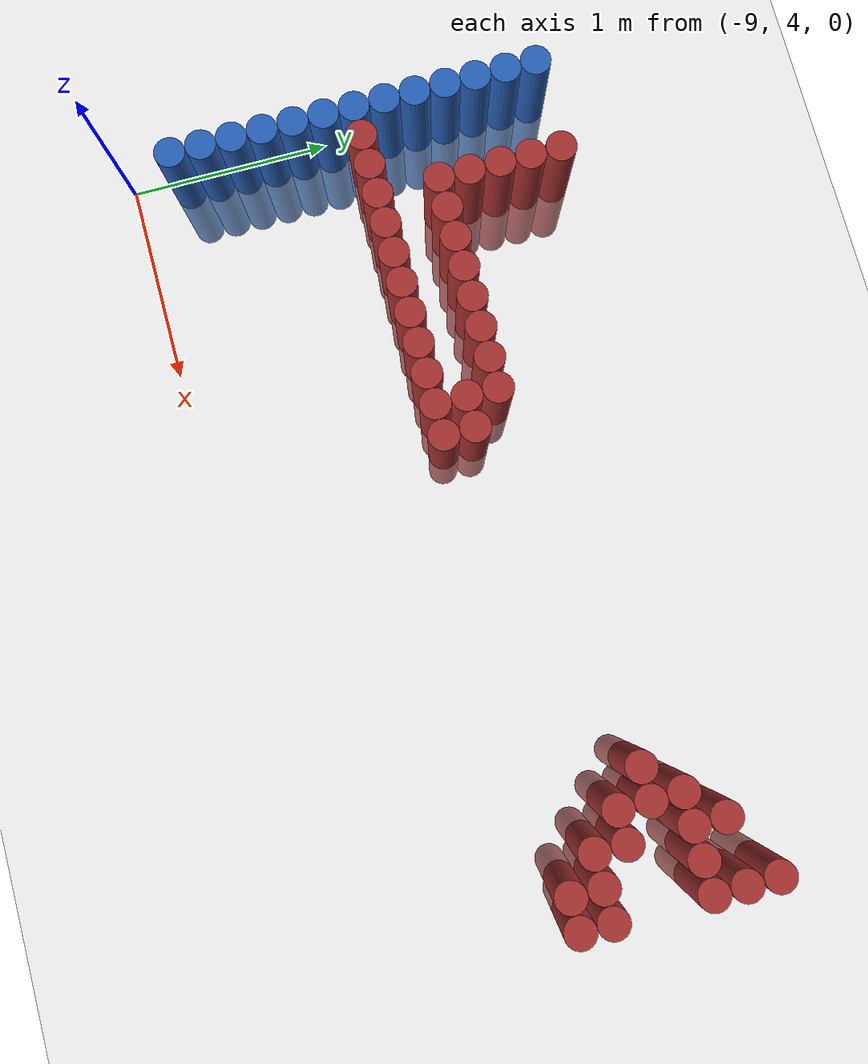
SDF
<sdf version="1.6">
 <world name="default">
  <model name="ground_plane">
   <static>1</static>
   <link name="link">
    <collision name="collision">
     <geometry><plane><normal>0 0 1</normal><size>100 100</size></plane></geometry>
     <surface><friction><ode><mu>100</mu><mu2>50</mu2></ode></friction></surface>
    </collision>
    <visual name="visual">
     <cast_shadows>0</cast_shadows>
     <geometry><plane><normal>0 0 1</normal><size>100 100</size></plane></geometry>
     <material>
      <script><uri>file://media/materials/scripts/gazebo.material</uri><name>Gazebo/Grey</name></script>
     </material>
    </visual>
   </link>
  </model>
  <model name="unit_cylinder_114">
   <static>1</static>
   <pose>-8.925000 4.275000 0.000000 0.000000 0.000000 0.000000</pose>
   <link name="link">
    <inertial>
     <mass>1</mass>
     <inertia><ixx>0.145833</ixx><ixy>0</ixy><ixz>0</ixz><iyy>0.145833</iyy><iyz>0</iyz><izz>0.125</izz></inertia>
    </inertial>
    <collision name="collision">
     <geometry><cylinder><radius>0.075000</radius><length>1</length></cylinder></geometry>
    </collision>
    <visual name="visual">
     <geometry><cylinder><radius>0.075000</radius><length>1</length></cylinder></geometry>
     <material>
      <ambient>0.152000 0.379000 0.720000 1</ambient>
      <diffuse>0.152000 0.379000 0.720000 1</diffuse>
     </material>
     <material>
      <script><name>Gazebo/Grey</name><uri>file://media/materials/scripts/gazebo.material</uri></script>
     </material>
    </visual>
   </link>
  </model>
  <model name="unit_cylinder_116">
   <static>1</static>
   <pose>-8.925000 4.425000 0.000000 0.000000 0.000000 0.000000</pose>
   <link name="link">
    <inertial>
     <mass>1</mass>
     <inertia><ixx>0.145833</ixx><ixy>0</ixy><ixz>0</ixz><iyy>0.145833</iyy><iyz>0</iyz><izz>0.125</izz></inertia>
    </inertial>
    <collision name="collision">
     <geometry><cylinder><radius>0.075000</radius><length>1</length></cylinder></geometry>
    </collision>
    <visual name="visual">
     <geometry><cylinder><radius>0.075000</radius><length>1</length></cylinder></geometry>
     <material>
      <ambient>0.152000 0.379000 0.720000 1</ambient>
      <diffuse>0.152000 0.379000 0.720000 1</diffuse>
     </material>
     <material>
      <script><name>Gazebo/Grey</name><uri>file://media/materials/scripts/gazebo.material</uri></script>
     </material>
    </visual>
   </link>
  </model>
  <model name="unit_cylinder_118">
   <static>1</static>
   <pose>-8.925000 4.575000 0.000000 0.000000 0.000000 0.000000</pose>
   <link name="link">
    <inertial>
     <mass>1</mass>
     <inertia><ixx>0.145833</ixx><ixy>0</ixy><ixz>0</ixz><iyy>0.145833</iyy><iyz>0</iyz><izz>0.125</izz></inertia>
    </inertial>
    <collision name="collision">
     <geometry><cylinder><radius>0.075000</radius><length>1</length></cylinder></geometry>
    </collision>
    <visual name="visual">
     <geometry><cylinder><radius>0.075000</radius><length>1</length></cylinder></geometry>
     <material>
      <ambient>0.152000 0.379000 0.720000 1</ambient>
      <diffuse>0.152000 0.379000 0.720000 1</diffuse>
     </material>
     <material>
      <script><name>Gazebo/Grey</name><uri>file://media/materials/scripts/gazebo.material</uri></script>
     </material>
    </visual>
   </link>
  </model>
  <model name="unit_cylinder_120">
   <static>1</static>
   <pose>-8.925000 4.725000 0.000000 0.000000 0.000000 0.000000</pose>
   <link name="link">
    <inertial>
     <mass>1</mass>
     <inertia><ixx>0.145833</ixx><ixy>0</ixy><ixz>0</ixz><iyy>0.145833</iyy><iyz>0</iyz><izz>0.125</izz></inertia>
    </inertial>
    <collision name="collision">
     <geometry><cylinder><radius>0.075000</radius><length>1</length></cylinder></geometry>
    </collision>
    <visual name="visual">
     <geometry><cylinder><radius>0.075000</radius><length>1</length></cylinder></geometry>
     <material>
      <ambient>0.152000 0.379000 0.720000 1</ambient>
      <diffuse>0.152000 0.379000 0.720000 1</diffuse>
     </material>
     <material>
      <script><name>Gazebo/Grey</name><uri>file://media/materials/scripts/gazebo.material</uri></script>
     </material>
    </visual>
   </link>
  </model>
  <model name="unit_cylinder_122">
   <static>1</static>
   <pose>-8.925000 4.875000 0.000000 0.000000 0.000000 0.000000</pose>
   <link name="link">
    <inertial>
     <mass>1</mass>
     <inertia><ixx>0.145833</ixx><ixy>0</ixy><ixz>0</ixz><iyy>0.145833</iyy><iyz>0</iyz><izz>0.125</izz></inertia>
    </inertial>
    <collision name="collision">
     <geometry><cylinder><radius>0.075000</radius><length>1</length></cylinder></geometry>
    </collision>
    <visual name="visual">
     <geometry><cylinder><radius>0.075000</radius><length>1</length></cylinder></geometry>
     <material>
      <ambient>0.152000 0.379000 0.720000 1</ambient>
      <diffuse>0.152000 0.379000 0.720000 1</diffuse>
     </material>
     <material>
      <script><name>Gazebo/Grey</name><uri>file://media/materials/scripts/gazebo.material</uri></script>
     </material>
    </visual>
   </link>
  </model>
  <model name="unit_cylinder_124">
   <static>1</static>
   <pose>-8.925000 5.025000 0.000000 0.000000 0.000000 0.000000</pose>
   <link name="link">
    <inertial>
     <mass>1</mass>
     <inertia><ixx>0.145833</ixx><ixy>0</ixy><ixz>0</ixz><iyy>0.145833</iyy><iyz>0</iyz><izz>0.125</izz></inertia>
    </inertial>
    <collision name="collision">
     <geometry><cylinder><radius>0.075000</radius><length>1</length></cylinder></geometry>
    </collision>
    <visual name="visual">
     <geometry><cylinder><radius>0.075000</radius><length>1</length></cylinder></geometry>
     <material>
      <ambient>0.152000 0.379000 0.720000 1</ambient>
      <diffuse>0.152000 0.379000 0.720000 1</diffuse>
     </material>
     <material>
      <script><name>Gazebo/Grey</name><uri>file://media/materials/scripts/gazebo.material</uri></script>
     </material>
    </visual>
   </link>
  </model>
  <model name="unit_cylinder_125">
   <static>1</static>
   <pose>-8.925000 5.175000 0.000000 0.000000 0.000000 0.000000</pose>
   <link name="link">
    <inertial>
     <mass>1</mass>
     <inertia><ixx>0.145833</ixx><ixy>0</ixy><ixz>0</ixz><iyy>0.145833</iyy><iyz>0</iyz><izz>0.125</izz></inertia>
    </inertial>
    <collision name="collision">
     <geometry><cylinder><radius>0.075000</radius><length>1</length></cylinder></geometry>
    </collision>
    <visual name="visual">
     <geometry><cylinder><radius>0.075000</radius><length>1</length></cylinder></geometry>
     <material>
      <ambient>0.152000 0.379000 0.720000 1</ambient>
      <diffuse>0.152000 0.379000 0.720000 1</diffuse>
     </material>
     <material>
      <script><name>Gazebo/Grey</name><uri>file://media/materials/scripts/gazebo.material</uri></script>
     </material>
    </visual>
   </link>
  </model>
  <model name="unit_cylinder_126">
   <static>1</static>
   <pose>-8.925000 5.325000 0.000000 0.000000 0.000000 0.000000</pose>
   <link name="link">
    <inertial>
     <mass>1</mass>
     <inertia><ixx>0.145833</ixx><ixy>0</ixy><ixz>0</ixz><iyy>0.145833</iyy><iyz>0</iyz><izz>0.125</izz></inertia>
    </inertial>
    <collision name="collision">
     <geometry><cylinder><radius>0.075000</radius><length>1</length></cylinder></geometry>
    </collision>
    <visual name="visual">
     <geometry><cylinder><radius>0.075000</radius><length>1</length></cylinder></geometry>
     <material>
      <ambient>0.152000 0.379000 0.720000 1</ambient>
      <diffuse>0.152000 0.379000 0.720000 1</diffuse>
     </material>
     <material>
      <script><name>Gazebo/Grey</name><uri>file://media/materials/scripts/gazebo.material</uri></script>
     </material>
    </visual>
   </link>
  </model>
  <model name="unit_cylinder_127">
   <static>1</static>
   <pose>-8.925000 5.475000 0.000000 0.000000 0.000000 0.000000</pose>
   <link name="link">
    <inertial>
     <mass>1</mass>
     <inertia><ixx>0.145833</ixx><ixy>0</ixy><ixz>0</ixz><iyy>0.145833</iyy><iyz>0</iyz><izz>0.125</izz></inertia>
    </inertial>
    <collision name="collision">
     <geometry><cylinder><radius>0.075000</radius><length>1</length></cylinder></geometry>
    </collision>
    <visual name="visual">
     <geometry><cylinder><radius>0.075000</radius><length>1</length></cylinder></geometry>
     <material>
      <ambient>0.152000 0.379000 0.720000 1</ambient>
      <diffuse>0.152000 0.379000 0.720000 1</diffuse>
     </material>
     <material>
      <script><name>Gazebo/Grey</name><uri>file://media/materials/scripts/gazebo.material</uri></script>
     </material>
    </visual>
   </link>
  </model>
  <model name="unit_cylinder_128">
   <static>1</static>
   <pose>-8.925000 5.625000 0.000000 0.000000 0.000000 0.000000</pose>
   <link name="link">
    <inertial>
     <mass>1</mass>
     <inertia><ixx>0.145833</ixx><ixy>0</ixy><ixz>0</ixz><iyy>0.145833</iyy><iyz>0</iyz><izz>0.125</izz></inertia>
    </inertial>
    <collision name="collision">
     <geometry><cylinder><radius>0.075000</radius><length>1</length></cylinder></geometry>
    </collision>
    <visual name="visual">
     <geometry><cylinder><radius>0.075000</radius><length>1</length></cylinder></geometry>
     <material>
      <ambient>0.152000 0.379000 0.720000 1</ambient>
      <diffuse>0.152000 0.379000 0.720000 1</diffuse>
     </material>
     <material>
      <script><name>Gazebo/Grey</name><uri>file://media/materials/scripts/gazebo.material</uri></script>
     </material>
    </visual>
   </link>
  </model>
  <model name="unit_cylinder_129">
   <static>1</static>
   <pose>-8.925000 5.775000 0.000000 0.000000 0.000000 0.000000</pose>
   <link name="link">
    <inertial>
     <mass>1</mass>
     <inertia><ixx>0.145833</ixx><ixy>0</ixy><ixz>0</ixz><iyy>0.145833</iyy><iyz>0</iyz><izz>0.125</izz></inertia>
    </inertial>
    <collision name="collision">
     <geometry><cylinder><radius>0.075000</radius><length>1</length></cylinder></geometry>
    </collision>
    <visual name="visual">
     <geometry><cylinder><radius>0.075000</radius><length>1</length></cylinder></geometry>
     <material>
      <ambient>0.152000 0.379000 0.720000 1</ambient>
      <diffuse>0.152000 0.379000 0.720000 1</diffuse>
     </material>
     <material>
      <script><name>Gazebo/Grey</name><uri>file://media/materials/scripts/gazebo.material</uri></script>
     </material>
    </visual>
   </link>
  </model>
  <model name="unit_cylinder_130">
   <static>1</static>
   <pose>-8.925000 5.925000 0.000000 0.000000 0.000000 0.000000</pose>
   <link name="link">
    <inertial>
     <mass>1</mass>
     <inertia><ixx>0.145833</ixx><ixy>0</ixy><ixz>0</ixz><iyy>0.145833</iyy><iyz>0</iyz><izz>0.125</izz></inertia>
    </inertial>
    <collision name="collision">
     <geometry><cylinder><radius>0.075000</radius><length>1</length></cylinder></geometry>
    </collision>
    <visual name="visual">
     <geometry><cylinder><radius>0.075000</radius><length>1</length></cylinder></geometry>
     <material>
      <ambient>0.152000 0.379000 0.720000 1</ambient>
      <diffuse>0.152000 0.379000 0.720000 1</diffuse>
     </material>
     <material>
      <script><name>Gazebo/Grey</name><uri>file://media/materials/scripts/gazebo.material</uri></script>
     </material>
    </visual>
   </link>
  </model>
  <model name="unit_cylinder_131">
   <static>1</static>
   <pose>-8.925000 6.075000 0.000000 0.000000 0.000000 0.000000</pose>
   <link name="link">
    <inertial>
     <mass>1</mass>
     <inertia><ixx>0.145833</ixx><ixy>0</ixy><ixz>0</ixz><iyy>0.145833</iyy><iyz>0</iyz><izz>0.125</izz></inertia>
    </inertial>
    <collision name="collision">
     <geometry><cylinder><radius>0.075000</radius><length>1</length></cylinder></geometry>
    </collision>
    <visual name="visual">
     <geometry><cylinder><radius>0.075000</radius><length>1</length></cylinder></geometry>
     <material>
      <ambient>0.152000 0.379000 0.720000 1</ambient>
      <diffuse>0.152000 0.379000 0.720000 1</diffuse>
     </material>
     <material>
      <script><name>Gazebo/Grey</name><uri>file://media/materials/scripts/gazebo.material</uri></script>
     </material>
    </visual>
   </link>
  </model>
  <model name="unit_cylinder_155">
   <static>1</static>
   <pose>-8.775000 5.175000 0.000000 0.000000 0.000000 0.000000</pose>
   <link name="link">
    <inertial>
     <mass>1</mass>
     <inertia><ixx>0.145833</ixx><ixy>0</ixy><ixz>0</ixz><iyy>0.145833</iyy><iyz>0</iyz><izz>0.125</izz></inertia>
    </inertial>
    <collision name="collision">
     <geometry><cylinder><radius>0.075000</radius><length>1</length></cylinder></geometry>
    </collision>
    <visual name="visual">
     <geometry><cylinder><radius>0.075000</radius><length>1</length></cylinder></geometry>
     <material>
      <ambient>0.648000 0.192000 0.192000 1</ambient>
      <diffuse>0.648000 0.192000 0.192000 1</diffuse>
     </material>
     <material>
      <script><name>Gazebo/Grey</name><uri>file://media/materials/scripts/gazebo.material</uri></script>
     </material>
    </visual>
   </link>
  </model>
  <model name="unit_cylinder_157">
   <static>1</static>
   <pose>-8.625000 5.175000 0.000000 0.000000 0.000000 0.000000</pose>
   <link name="link">
    <inertial>
     <mass>1</mass>
     <inertia><ixx>0.145833</ixx><ixy>0</ixy><ixz>0</ixz><iyy>0.145833</iyy><iyz>0</iyz><izz>0.125</izz></inertia>
    </inertial>
    <collision name="collision">
     <geometry><cylinder><radius>0.075000</radius><length>1</length></cylinder></geometry>
    </collision>
    <visual name="visual">
     <geometry><cylinder><radius>0.075000</radius><length>1</length></cylinder></geometry>
     <material>
      <ambient>0.648000 0.192000 0.192000 1</ambient>
      <diffuse>0.648000 0.192000 0.192000 1</diffuse>
     </material>
     <material>
      <script><name>Gazebo/Grey</name><uri>file://media/materials/scripts/gazebo.material</uri></script>
     </material>
    </visual>
   </link>
  </model>
  <model name="unit_cylinder_159">
   <static>1</static>
   <pose>-8.475000 5.175000 0.000000 0.000000 0.000000 0.000000</pose>
   <link name="link">
    <inertial>
     <mass>1</mass>
     <inertia><ixx>0.145833</ixx><ixy>0</ixy><ixz>0</ixz><iyy>0.145833</iyy><iyz>0</iyz><izz>0.125</izz></inertia>
    </inertial>
    <collision name="collision">
     <geometry><cylinder><radius>0.075000</radius><length>1</length></cylinder></geometry>
    </collision>
    <visual name="visual">
     <geometry><cylinder><radius>0.075000</radius><length>1</length></cylinder></geometry>
     <material>
      <ambient>0.648000 0.192000 0.192000 1</ambient>
      <diffuse>0.648000 0.192000 0.192000 1</diffuse>
     </material>
     <material>
      <script><name>Gazebo/Grey</name><uri>file://media/materials/scripts/gazebo.material</uri></script>
     </material>
    </visual>
   </link>
  </model>
  <model name="unit_cylinder_160">
   <static>1</static>
   <pose>-8.475000 5.475000 0.000000 0.000000 0.000000 0.000000</pose>
   <link name="link">
    <inertial>
     <mass>1</mass>
     <inertia><ixx>0.145833</ixx><ixy>0</ixy><ixz>0</ixz><iyy>0.145833</iyy><iyz>0</iyz><izz>0.125</izz></inertia>
    </inertial>
    <collision name="collision">
     <geometry><cylinder><radius>0.075000</radius><length>1</length></cylinder></geometry>
    </collision>
    <visual name="visual">
     <geometry><cylinder><radius>0.075000</radius><length>1</length></cylinder></geometry>
     <material>
      <ambient>0.648000 0.192000 0.192000 1</ambient>
      <diffuse>0.648000 0.192000 0.192000 1</diffuse>
     </material>
     <material>
      <script><name>Gazebo/Grey</name><uri>file://media/materials/scripts/gazebo.material</uri></script>
     </material>
    </visual>
   </link>
  </model>
  <model name="unit_cylinder_161">
   <static>1</static>
   <pose>-8.475000 5.625000 0.000000 0.000000 0.000000 0.000000</pose>
   <link name="link">
    <inertial>
     <mass>1</mass>
     <inertia><ixx>0.145833</ixx><ixy>0</ixy><ixz>0</ixz><iyy>0.145833</iyy><iyz>0</iyz><izz>0.125</izz></inertia>
    </inertial>
    <collision name="collision">
     <geometry><cylinder><radius>0.075000</radius><length>1</length></cylinder></geometry>
    </collision>
    <visual name="visual">
     <geometry><cylinder><radius>0.075000</radius><length>1</length></cylinder></geometry>
     <material>
      <ambient>0.648000 0.192000 0.192000 1</ambient>
      <diffuse>0.648000 0.192000 0.192000 1</diffuse>
     </material>
     <material>
      <script><name>Gazebo/Grey</name><uri>file://media/materials/scripts/gazebo.material</uri></script>
     </material>
    </visual>
   </link>
  </model>
  <model name="unit_cylinder_162">
   <static>1</static>
   <pose>-8.475000 5.775000 0.000000 0.000000 0.000000 0.000000</pose>
   <link name="link">
    <inertial>
     <mass>1</mass>
     <inertia><ixx>0.145833</ixx><ixy>0</ixy><ixz>0</ixz><iyy>0.145833</iyy><iyz>0</iyz><izz>0.125</izz></inertia>
    </inertial>
    <collision name="collision">
     <geometry><cylinder><radius>0.075000</radius><length>1</length></cylinder></geometry>
    </collision>
    <visual name="visual">
     <geometry><cylinder><radius>0.075000</radius><length>1</length></cylinder></geometry>
     <material>
      <ambient>0.648000 0.192000 0.192000 1</ambient>
      <diffuse>0.648000 0.192000 0.192000 1</diffuse>
     </material>
     <material>
      <script><name>Gazebo/Grey</name><uri>file://media/materials/scripts/gazebo.material</uri></script>
     </material>
    </visual>
   </link>
  </model>
  <model name="unit_cylinder_163">
   <static>1</static>
   <pose>-8.475000 5.925000 0.000000 0.000000 0.000000 0.000000</pose>
   <link name="link">
    <inertial>
     <mass>1</mass>
     <inertia><ixx>0.145833</ixx><ixy>0</ixy><ixz>0</ixz><iyy>0.145833</iyy><iyz>0</iyz><izz>0.125</izz></inertia>
    </inertial>
    <collision name="collision">
     <geometry><cylinder><radius>0.075000</radius><length>1</length></cylinder></geometry>
    </collision>
    <visual name="visual">
     <geometry><cylinder><radius>0.075000</radius><length>1</length></cylinder></geometry>
     <material>
      <ambient>0.648000 0.192000 0.192000 1</ambient>
      <diffuse>0.648000 0.192000 0.192000 1</diffuse>
     </material>
     <material>
      <script><name>Gazebo/Grey</name><uri>file://media/materials/scripts/gazebo.material</uri></script>
     </material>
    </visual>
   </link>
  </model>
  <model name="unit_cylinder_164">
   <static>1</static>
   <pose>-8.475000 6.075000 0.000000 0.000000 0.000000 0.000000</pose>
   <link name="link">
    <inertial>
     <mass>1</mass>
     <inertia><ixx>0.145833</ixx><ixy>0</ixy><ixz>0</ixz><iyy>0.145833</iyy><iyz>0</iyz><izz>0.125</izz></inertia>
    </inertial>
    <collision name="collision">
     <geometry><cylinder><radius>0.075000</radius><length>1</length></cylinder></geometry>
    </collision>
    <visual name="visual">
     <geometry><cylinder><radius>0.075000</radius><length>1</length></cylinder></geometry>
     <material>
      <ambient>0.648000 0.192000 0.192000 1</ambient>
      <diffuse>0.648000 0.192000 0.192000 1</diffuse>
     </material>
     <material>
      <script><name>Gazebo/Grey</name><uri>file://media/materials/scripts/gazebo.material</uri></script>
     </material>
    </visual>
   </link>
  </model>
  <model name="unit_cylinder_188">
   <static>1</static>
   <pose>-8.325000 5.175000 0.000000 0.000000 0.000000 0.000000</pose>
   <link name="link">
    <inertial>
     <mass>1</mass>
     <inertia><ixx>0.145833</ixx><ixy>0</ixy><ixz>0</ixz><iyy>0.145833</iyy><iyz>0</iyz><izz>0.125</izz></inertia>
    </inertial>
    <collision name="collision">
     <geometry><cylinder><radius>0.075000</radius><length>1</length></cylinder></geometry>
    </collision>
    <visual name="visual">
     <geometry><cylinder><radius>0.075000</radius><length>1</length></cylinder></geometry>
     <material>
      <ambient>0.648000 0.192000 0.192000 1</ambient>
      <diffuse>0.648000 0.192000 0.192000 1</diffuse>
     </material>
     <material>
      <script><name>Gazebo/Grey</name><uri>file://media/materials/scripts/gazebo.material</uri></script>
     </material>
    </visual>
   </link>
  </model>
  <model name="unit_cylinder_189">
   <static>1</static>
   <pose>-8.325000 5.475000 0.000000 0.000000 0.000000 0.000000</pose>
   <link name="link">
    <inertial>
     <mass>1</mass>
     <inertia><ixx>0.145833</ixx><ixy>0</ixy><ixz>0</ixz><iyy>0.145833</iyy><iyz>0</iyz><izz>0.125</izz></inertia>
    </inertial>
    <collision name="collision">
     <geometry><cylinder><radius>0.075000</radius><length>1</length></cylinder></geometry>
    </collision>
    <visual name="visual">
     <geometry><cylinder><radius>0.075000</radius><length>1</length></cylinder></geometry>
     <material>
      <ambient>0.648000 0.192000 0.192000 1</ambient>
      <diffuse>0.648000 0.192000 0.192000 1</diffuse>
     </material>
     <material>
      <script><name>Gazebo/Grey</name><uri>file://media/materials/scripts/gazebo.material</uri></script>
     </material>
    </visual>
   </link>
  </model>
  <model name="unit_cylinder_190">
   <static>1</static>
   <pose>-8.175000 5.175000 0.000000 0.000000 0.000000 0.000000</pose>
   <link name="link">
    <inertial>
     <mass>1</mass>
     <inertia><ixx>0.145833</ixx><ixy>0</ixy><ixz>0</ixz><iyy>0.145833</iyy><iyz>0</iyz><izz>0.125</izz></inertia>
    </inertial>
    <collision name="collision">
     <geometry><cylinder><radius>0.075000</radius><length>1</length></cylinder></geometry>
    </collision>
    <visual name="visual">
     <geometry><cylinder><radius>0.075000</radius><length>1</length></cylinder></geometry>
     <material>
      <ambient>0.648000 0.192000 0.192000 1</ambient>
      <diffuse>0.648000 0.192000 0.192000 1</diffuse>
     </material>
     <material>
      <script><name>Gazebo/Grey</name><uri>file://media/materials/scripts/gazebo.material</uri></script>
     </material>
    </visual>
   </link>
  </model>
  <model name="unit_cylinder_191">
   <static>1</static>
   <pose>-8.175000 5.475000 0.000000 0.000000 0.000000 0.000000</pose>
   <link name="link">
    <inertial>
     <mass>1</mass>
     <inertia><ixx>0.145833</ixx><ixy>0</ixy><ixz>0</ixz><iyy>0.145833</iyy><iyz>0</iyz><izz>0.125</izz></inertia>
    </inertial>
    <collision name="collision">
     <geometry><cylinder><radius>0.075000</radius><length>1</length></cylinder></geometry>
    </collision>
    <visual name="visual">
     <geometry><cylinder><radius>0.075000</radius><length>1</length></cylinder></geometry>
     <material>
      <ambient>0.648000 0.192000 0.192000 1</ambient>
      <diffuse>0.648000 0.192000 0.192000 1</diffuse>
     </material>
     <material>
      <script><name>Gazebo/Grey</name><uri>file://media/materials/scripts/gazebo.material</uri></script>
     </material>
    </visual>
   </link>
  </model>
  <model name="unit_cylinder_192">
   <static>1</static>
   <pose>-8.025000 5.175000 0.000000 0.000000 0.000000 0.000000</pose>
   <link name="link">
    <inertial>
     <mass>1</mass>
     <inertia><ixx>0.145833</ixx><ixy>0</ixy><ixz>0</ixz><iyy>0.145833</iyy><iyz>0</iyz><izz>0.125</izz></inertia>
    </inertial>
    <collision name="collision">
     <geometry><cylinder><radius>0.075000</radius><length>1</length></cylinder></geometry>
    </collision>
    <visual name="visual">
     <geometry><cylinder><radius>0.075000</radius><length>1</length></cylinder></geometry>
     <material>
      <ambient>0.648000 0.192000 0.192000 1</ambient>
      <diffuse>0.648000 0.192000 0.192000 1</diffuse>
     </material>
     <material>
      <script><name>Gazebo/Grey</name><uri>file://media/materials/scripts/gazebo.material</uri></script>
     </material>
    </visual>
   </link>
  </model>
  <model name="unit_cylinder_193">
   <static>1</static>
   <pose>-8.025000 5.475000 0.000000 0.000000 0.000000 0.000000</pose>
   <link name="link">
    <inertial>
     <mass>1</mass>
     <inertia><ixx>0.145833</ixx><ixy>0</ixy><ixz>0</ixz><iyy>0.145833</iyy><iyz>0</iyz><izz>0.125</izz></inertia>
    </inertial>
    <collision name="collision">
     <geometry><cylinder><radius>0.075000</radius><length>1</length></cylinder></geometry>
    </collision>
    <visual name="visual">
     <geometry><cylinder><radius>0.075000</radius><length>1</length></cylinder></geometry>
     <material>
      <ambient>0.648000 0.192000 0.192000 1</ambient>
      <diffuse>0.648000 0.192000 0.192000 1</diffuse>
     </material>
     <material>
      <script><name>Gazebo/Grey</name><uri>file://media/materials/scripts/gazebo.material</uri></script>
     </material>
    </visual>
   </link>
  </model>
  <model name="unit_cylinder_194">
   <static>1</static>
   <pose>-7.875000 5.175000 0.000000 0.000000 0.000000 0.000000</pose>
   <link name="link">
    <inertial>
     <mass>1</mass>
     <inertia><ixx>0.145833</ixx><ixy>0</ixy><ixz>0</ixz><iyy>0.145833</iyy><iyz>0</iyz><izz>0.125</izz></inertia>
    </inertial>
    <collision name="collision">
     <geometry><cylinder><radius>0.075000</radius><length>1</length></cylinder></geometry>
    </collision>
    <visual name="visual">
     <geometry><cylinder><radius>0.075000</radius><length>1</length></cylinder></geometry>
     <material>
      <ambient>0.648000 0.192000 0.192000 1</ambient>
      <diffuse>0.648000 0.192000 0.192000 1</diffuse>
     </material>
     <material>
      <script><name>Gazebo/Grey</name><uri>file://media/materials/scripts/gazebo.material</uri></script>
     </material>
    </visual>
   </link>
  </model>
  <model name="unit_cylinder_195">
   <static>1</static>
   <pose>-7.875000 5.475000 0.000000 0.000000 0.000000 0.000000</pose>
   <link name="link">
    <inertial>
     <mass>1</mass>
     <inertia><ixx>0.145833</ixx><ixy>0</ixy><ixz>0</ixz><iyy>0.145833</iyy><iyz>0</iyz><izz>0.125</izz></inertia>
    </inertial>
    <collision name="collision">
     <geometry><cylinder><radius>0.075000</radius><length>1</length></cylinder></geometry>
    </collision>
    <visual name="visual">
     <geometry><cylinder><radius>0.075000</radius><length>1</length></cylinder></geometry>
     <material>
      <ambient>0.648000 0.192000 0.192000 1</ambient>
      <diffuse>0.648000 0.192000 0.192000 1</diffuse>
     </material>
     <material>
      <script><name>Gazebo/Grey</name><uri>file://media/materials/scripts/gazebo.material</uri></script>
     </material>
    </visual>
   </link>
  </model>
  <model name="unit_cylinder_196">
   <static>1</static>
   <pose>-7.725000 5.175000 0.000000 0.000000 0.000000 0.000000</pose>
   <link name="link">
    <inertial>
     <mass>1</mass>
     <inertia><ixx>0.145833</ixx><ixy>0</ixy><ixz>0</ixz><iyy>0.145833</iyy><iyz>0</iyz><izz>0.125</izz></inertia>
    </inertial>
    <collision name="collision">
     <geometry><cylinder><radius>0.075000</radius><length>1</length></cylinder></geometry>
    </collision>
    <visual name="visual">
     <geometry><cylinder><radius>0.075000</radius><length>1</length></cylinder></geometry>
     <material>
      <ambient>0.648000 0.192000 0.192000 1</ambient>
      <diffuse>0.648000 0.192000 0.192000 1</diffuse>
     </material>
     <material>
      <script><name>Gazebo/Grey</name><uri>file://media/materials/scripts/gazebo.material</uri></script>
     </material>
    </visual>
   </link>
  </model>
  <model name="unit_cylinder_197">
   <static>1</static>
   <pose>-7.725000 5.475000 0.000000 0.000000 0.000000 0.000000</pose>
   <link name="link">
    <inertial>
     <mass>1</mass>
     <inertia><ixx>0.145833</ixx><ixy>0</ixy><ixz>0</ixz><iyy>0.145833</iyy><iyz>0</iyz><izz>0.125</izz></inertia>
    </inertial>
    <collision name="collision">
     <geometry><cylinder><radius>0.075000</radius><length>1</length></cylinder></geometry>
    </collision>
    <visual name="visual">
     <geometry><cylinder><radius>0.075000</radius><length>1</length></cylinder></geometry>
     <material>
      <ambient>0.648000 0.192000 0.192000 1</ambient>
      <diffuse>0.648000 0.192000 0.192000 1</diffuse>
     </material>
     <material>
      <script><name>Gazebo/Grey</name><uri>file://media/materials/scripts/gazebo.material</uri></script>
     </material>
    </visual>
   </link>
  </model>
  <model name="unit_cylinder_198">
   <static>1</static>
   <pose>-7.575000 5.175000 0.000000 0.000000 0.000000 0.000000</pose>
   <link name="link">
    <inertial>
     <mass>1</mass>
     <inertia><ixx>0.145833</ixx><ixy>0</ixy><ixz>0</ixz><iyy>0.145833</iyy><iyz>0</iyz><izz>0.125</izz></inertia>
    </inertial>
    <collision name="collision">
     <geometry><cylinder><radius>0.075000</radius><length>1</length></cylinder></geometry>
    </collision>
    <visual name="visual">
     <geometry><cylinder><radius>0.075000</radius><length>1</length></cylinder></geometry>
     <material>
      <ambient>0.648000 0.192000 0.192000 1</ambient>
      <diffuse>0.648000 0.192000 0.192000 1</diffuse>
     </material>
     <material>
      <script><name>Gazebo/Grey</name><uri>file://media/materials/scripts/gazebo.material</uri></script>
     </material>
    </visual>
   </link>
  </model>
  <model name="unit_cylinder_199">
   <static>1</static>
   <pose>-7.575000 5.475000 0.000000 0.000000 0.000000 0.000000</pose>
   <link name="link">
    <inertial>
     <mass>1</mass>
     <inertia><ixx>0.145833</ixx><ixy>0</ixy><ixz>0</ixz><iyy>0.145833</iyy><iyz>0</iyz><izz>0.125</izz></inertia>
    </inertial>
    <collision name="collision">
     <geometry><cylinder><radius>0.075000</radius><length>1</length></cylinder></geometry>
    </collision>
    <visual name="visual">
     <geometry><cylinder><radius>0.075000</radius><length>1</length></cylinder></geometry>
     <material>
      <ambient>0.648000 0.192000 0.192000 1</ambient>
      <diffuse>0.648000 0.192000 0.192000 1</diffuse>
     </material>
     <material>
      <script><name>Gazebo/Grey</name><uri>file://media/materials/scripts/gazebo.material</uri></script>
     </material>
    </visual>
   </link>
  </model>
  <model name="unit_cylinder_200">
   <static>1</static>
   <pose>-7.425000 5.175000 0.000000 0.000000 0.000000 0.000000</pose>
   <link name="link">
    <inertial>
     <mass>1</mass>
     <inertia><ixx>0.145833</ixx><ixy>0</ixy><ixz>0</ixz><iyy>0.145833</iyy><iyz>0</iyz><izz>0.125</izz></inertia>
    </inertial>
    <collision name="collision">
     <geometry><cylinder><radius>0.075000</radius><length>1</length></cylinder></geometry>
    </collision>
    <visual name="visual">
     <geometry><cylinder><radius>0.075000</radius><length>1</length></cylinder></geometry>
     <material>
      <ambient>0.648000 0.192000 0.192000 1</ambient>
      <diffuse>0.648000 0.192000 0.192000 1</diffuse>
     </material>
     <material>
      <script><name>Gazebo/Grey</name><uri>file://media/materials/scripts/gazebo.material</uri></script>
     </material>
    </visual>
   </link>
  </model>
  <model name="unit_cylinder_201">
   <static>1</static>
   <pose>-7.425000 5.325000 0.000000 0.000000 0.000000 0.000000</pose>
   <link name="link">
    <inertial>
     <mass>1</mass>
     <inertia><ixx>0.145833</ixx><ixy>0</ixy><ixz>0</ixz><iyy>0.145833</iyy><iyz>0</iyz><izz>0.125</izz></inertia>
    </inertial>
    <collision name="collision">
     <geometry><cylinder><radius>0.075000</radius><length>1</length></cylinder></geometry>
    </collision>
    <visual name="visual">
     <geometry><cylinder><radius>0.075000</radius><length>1</length></cylinder></geometry>
     <material>
      <ambient>0.648000 0.192000 0.192000 1</ambient>
      <diffuse>0.648000 0.192000 0.192000 1</diffuse>
     </material>
     <material>
      <script><name>Gazebo/Grey</name><uri>file://media/materials/scripts/gazebo.material</uri></script>
     </material>
    </visual>
   </link>
  </model>
  <model name="unit_cylinder_202">
   <static>1</static>
   <pose>-7.425000 5.475000 0.000000 0.000000 0.000000 0.000000</pose>
   <link name="link">
    <inertial>
     <mass>1</mass>
     <inertia><ixx>0.145833</ixx><ixy>0</ixy><ixz>0</ixz><iyy>0.145833</iyy><iyz>0</iyz><izz>0.125</izz></inertia>
    </inertial>
    <collision name="collision">
     <geometry><cylinder><radius>0.075000</radius><length>1</length></cylinder></geometry>
    </collision>
    <visual name="visual">
     <geometry><cylinder><radius>0.075000</radius><length>1</length></cylinder></geometry>
     <material>
      <ambient>0.648000 0.192000 0.192000 1</ambient>
      <diffuse>0.648000 0.192000 0.192000 1</diffuse>
     </material>
     <material>
      <script><name>Gazebo/Grey</name><uri>file://media/materials/scripts/gazebo.material</uri></script>
     </material>
    </visual>
   </link>
  </model>
  <model name="unit_cylinder_203">
   <static>1</static>
   <pose>-7.275000 5.175000 0.000000 0.000000 0.000000 0.000000</pose>
   <link name="link">
    <inertial>
     <mass>1</mass>
     <inertia><ixx>0.145833</ixx><ixy>0</ixy><ixz>0</ixz><iyy>0.145833</iyy><iyz>0</iyz><izz>0.125</izz></inertia>
    </inertial>
    <collision name="collision">
     <geometry><cylinder><radius>0.075000</radius><length>1</length></cylinder></geometry>
    </collision>
    <visual name="visual">
     <geometry><cylinder><radius>0.075000</radius><length>1</length></cylinder></geometry>
     <material>
      <ambient>0.648000 0.192000 0.192000 1</ambient>
      <diffuse>0.648000 0.192000 0.192000 1</diffuse>
     </material>
     <material>
      <script><name>Gazebo/Grey</name><uri>file://media/materials/scripts/gazebo.material</uri></script>
     </material>
    </visual>
   </link>
  </model>
  <model name="unit_cylinder_204">
   <static>1</static>
   <pose>-7.275000 5.325000 0.000000 0.000000 0.000000 0.000000</pose>
   <link name="link">
    <inertial>
     <mass>1</mass>
     <inertia><ixx>0.145833</ixx><ixy>0</ixy><ixz>0</ixz><iyy>0.145833</iyy><iyz>0</iyz><izz>0.125</izz></inertia>
    </inertial>
    <collision name="collision">
     <geometry><cylinder><radius>0.075000</radius><length>1</length></cylinder></geometry>
    </collision>
    <visual name="visual">
     <geometry><cylinder><radius>0.075000</radius><length>1</length></cylinder></geometry>
     <material>
      <ambient>0.648000 0.192000 0.192000 1</ambient>
      <diffuse>0.648000 0.192000 0.192000 1</diffuse>
     </material>
     <material>
      <script><name>Gazebo/Grey</name><uri>file://media/materials/scripts/gazebo.material</uri></script>
     </material>
    </visual>
   </link>
  </model>
  <model name="unit_cylinder_269">
   <static>1</static>
   <pose>-5.625000 5.625000 0.000000 0.000000 0.000000 0.000000</pose>
   <link name="link">
    <inertial>
     <mass>1</mass>
     <inertia><ixx>0.145833</ixx><ixy>0</ixy><ixz>0</ixz><iyy>0.145833</iyy><iyz>0</iyz><izz>0.125</izz></inertia>
    </inertial>
    <collision name="collision">
     <geometry><cylinder><radius>0.075000</radius><length>1</length></cylinder></geometry>
    </collision>
    <visual name="visual">
     <geometry><cylinder><radius>0.075000</radius><length>1</length></cylinder></geometry>
     <material>
      <ambient>0.648000 0.192000 0.192000 1</ambient>
      <diffuse>0.648000 0.192000 0.192000 1</diffuse>
     </material>
     <material>
      <script><name>Gazebo/Grey</name><uri>file://media/materials/scripts/gazebo.material</uri></script>
     </material>
    </visual>
   </link>
  </model>
  <model name="unit_cylinder_275">
   <static>1</static>
   <pose>-5.475000 5.475000 0.000000 0.000000 0.000000 0.000000</pose>
   <link name="link">
    <inertial>
     <mass>1</mass>
     <inertia><ixx>0.145833</ixx><ixy>0</ixy><ixz>0</ixz><iyy>0.145833</iyy><iyz>0</iyz><izz>0.125</izz></inertia>
    </inertial>
    <collision name="collision">
     <geometry><cylinder><radius>0.075000</radius><length>1</length></cylinder></geometry>
    </collision>
    <visual name="visual">
     <geometry><cylinder><radius>0.075000</radius><length>1</length></cylinder></geometry>
     <material>
      <ambient>0.648000 0.192000 0.192000 1</ambient>
      <diffuse>0.648000 0.192000 0.192000 1</diffuse>
     </material>
     <material>
      <script><name>Gazebo/Grey</name><uri>file://media/materials/scripts/gazebo.material</uri></script>
     </material>
    </visual>
   </link>
  </model>
  <model name="unit_cylinder_276">
   <static>1</static>
   <pose>-5.475000 5.625000 0.000000 0.000000 0.000000 0.000000</pose>
   <link name="link">
    <inertial>
     <mass>1</mass>
     <inertia><ixx>0.145833</ixx><ixy>0</ixy><ixz>0</ixz><iyy>0.145833</iyy><iyz>0</iyz><izz>0.125</izz></inertia>
    </inertial>
    <collision name="collision">
     <geometry><cylinder><radius>0.075000</radius><length>1</length></cylinder></geometry>
    </collision>
    <visual name="visual">
     <geometry><cylinder><radius>0.075000</radius><length>1</length></cylinder></geometry>
     <material>
      <ambient>0.648000 0.192000 0.192000 1</ambient>
      <diffuse>0.648000 0.192000 0.192000 1</diffuse>
     </material>
     <material>
      <script><name>Gazebo/Grey</name><uri>file://media/materials/scripts/gazebo.material</uri></script>
     </material>
    </visual>
   </link>
  </model>
  <model name="unit_cylinder_277">
   <static>1</static>
   <pose>-5.475000 5.775000 0.000000 0.000000 0.000000 0.000000</pose>
   <link name="link">
    <inertial>
     <mass>1</mass>
     <inertia><ixx>0.145833</ixx><ixy>0</ixy><ixz>0</ixz><iyy>0.145833</iyy><iyz>0</iyz><izz>0.125</izz></inertia>
    </inertial>
    <collision name="collision">
     <geometry><cylinder><radius>0.075000</radius><length>1</length></cylinder></geometry>
    </collision>
    <visual name="visual">
     <geometry><cylinder><radius>0.075000</radius><length>1</length></cylinder></geometry>
     <material>
      <ambient>0.648000 0.192000 0.192000 1</ambient>
      <diffuse>0.648000 0.192000 0.192000 1</diffuse>
     </material>
     <material>
      <script><name>Gazebo/Grey</name><uri>file://media/materials/scripts/gazebo.material</uri></script>
     </material>
    </visual>
   </link>
  </model>
  <model name="unit_cylinder_281">
   <static>1</static>
   <pose>-5.325000 5.325000 0.000000 0.000000 0.000000 0.000000</pose>
   <link name="link">
    <inertial>
     <mass>1</mass>
     <inertia><ixx>0.145833</ixx><ixy>0</ixy><ixz>0</ixz><iyy>0.145833</iyy><iyz>0</iyz><izz>0.125</izz></inertia>
    </inertial>
    <collision name="collision">
     <geometry><cylinder><radius>0.075000</radius><length>1</length></cylinder></geometry>
    </collision>
    <visual name="visual">
     <geometry><cylinder><radius>0.075000</radius><length>1</length></cylinder></geometry>
     <material>
      <ambient>0.648000 0.192000 0.192000 1</ambient>
      <diffuse>0.648000 0.192000 0.192000 1</diffuse>
     </material>
     <material>
      <script><name>Gazebo/Grey</name><uri>file://media/materials/scripts/gazebo.material</uri></script>
     </material>
    </visual>
   </link>
  </model>
  <model name="unit_cylinder_282">
   <static>1</static>
   <pose>-5.325000 5.475000 0.000000 0.000000 0.000000 0.000000</pose>
   <link name="link">
    <inertial>
     <mass>1</mass>
     <inertia><ixx>0.145833</ixx><ixy>0</ixy><ixz>0</ixz><iyy>0.145833</iyy><iyz>0</iyz><izz>0.125</izz></inertia>
    </inertial>
    <collision name="collision">
     <geometry><cylinder><radius>0.075000</radius><length>1</length></cylinder></geometry>
    </collision>
    <visual name="visual">
     <geometry><cylinder><radius>0.075000</radius><length>1</length></cylinder></geometry>
     <material>
      <ambient>0.648000 0.192000 0.192000 1</ambient>
      <diffuse>0.648000 0.192000 0.192000 1</diffuse>
     </material>
     <material>
      <script><name>Gazebo/Grey</name><uri>file://media/materials/scripts/gazebo.material</uri></script>
     </material>
    </visual>
   </link>
  </model>
  <model name="unit_cylinder_283">
   <static>1</static>
   <pose>-5.325000 5.775000 0.000000 0.000000 0.000000 0.000000</pose>
   <link name="link">
    <inertial>
     <mass>1</mass>
     <inertia><ixx>0.145833</ixx><ixy>0</ixy><ixz>0</ixz><iyy>0.145833</iyy><iyz>0</iyz><izz>0.125</izz></inertia>
    </inertial>
    <collision name="collision">
     <geometry><cylinder><radius>0.075000</radius><length>1</length></cylinder></geometry>
    </collision>
    <visual name="visual">
     <geometry><cylinder><radius>0.075000</radius><length>1</length></cylinder></geometry>
     <material>
      <ambient>0.648000 0.192000 0.192000 1</ambient>
      <diffuse>0.648000 0.192000 0.192000 1</diffuse>
     </material>
     <material>
      <script><name>Gazebo/Grey</name><uri>file://media/materials/scripts/gazebo.material</uri></script>
     </material>
    </visual>
   </link>
  </model>
  <model name="unit_cylinder_284">
   <static>1</static>
   <pose>-5.325000 5.925000 0.000000 0.000000 0.000000 0.000000</pose>
   <link name="link">
    <inertial>
     <mass>1</mass>
     <inertia><ixx>0.145833</ixx><ixy>0</ixy><ixz>0</ixz><iyy>0.145833</iyy><iyz>0</iyz><izz>0.125</izz></inertia>
    </inertial>
    <collision name="collision">
     <geometry><cylinder><radius>0.075000</radius><length>1</length></cylinder></geometry>
    </collision>
    <visual name="visual">
     <geometry><cylinder><radius>0.075000</radius><length>1</length></cylinder></geometry>
     <material>
      <ambient>0.648000 0.192000 0.192000 1</ambient>
      <diffuse>0.648000 0.192000 0.192000 1</diffuse>
     </material>
     <material>
      <script><name>Gazebo/Grey</name><uri>file://media/materials/scripts/gazebo.material</uri></script>
     </material>
    </visual>
   </link>
  </model>
  <model name="unit_cylinder_287">
   <static>1</static>
   <pose>-5.175000 5.175000 0.000000 0.000000 0.000000 0.000000</pose>
   <link name="link">
    <inertial>
     <mass>1</mass>
     <inertia><ixx>0.145833</ixx><ixy>0</ixy><ixz>0</ixz><iyy>0.145833</iyy><iyz>0</iyz><izz>0.125</izz></inertia>
    </inertial>
    <collision name="collision">
     <geometry><cylinder><radius>0.075000</radius><length>1</length></cylinder></geometry>
    </collision>
    <visual name="visual">
     <geometry><cylinder><radius>0.075000</radius><length>1</length></cylinder></geometry>
     <material>
      <ambient>0.648000 0.192000 0.192000 1</ambient>
      <diffuse>0.648000 0.192000 0.192000 1</diffuse>
     </material>
     <material>
      <script><name>Gazebo/Grey</name><uri>file://media/materials/scripts/gazebo.material</uri></script>
     </material>
    </visual>
   </link>
  </model>
  <model name="unit_cylinder_288">
   <static>1</static>
   <pose>-5.175000 5.325000 0.000000 0.000000 0.000000 0.000000</pose>
   <link name="link">
    <inertial>
     <mass>1</mass>
     <inertia><ixx>0.145833</ixx><ixy>0</ixy><ixz>0</ixz><iyy>0.145833</iyy><iyz>0</iyz><izz>0.125</izz></inertia>
    </inertial>
    <collision name="collision">
     <geometry><cylinder><radius>0.075000</radius><length>1</length></cylinder></geometry>
    </collision>
    <visual name="visual">
     <geometry><cylinder><radius>0.075000</radius><length>1</length></cylinder></geometry>
     <material>
      <ambient>0.648000 0.192000 0.192000 1</ambient>
      <diffuse>0.648000 0.192000 0.192000 1</diffuse>
     </material>
     <material>
      <script><name>Gazebo/Grey</name><uri>file://media/materials/scripts/gazebo.material</uri></script>
     </material>
    </visual>
   </link>
  </model>
  <model name="unit_cylinder_289">
   <static>1</static>
   <pose>-5.175000 5.775000 0.000000 0.000000 0.000000 0.000000</pose>
   <link name="link">
    <inertial>
     <mass>1</mass>
     <inertia><ixx>0.145833</ixx><ixy>0</ixy><ixz>0</ixz><iyy>0.145833</iyy><iyz>0</iyz><izz>0.125</izz></inertia>
    </inertial>
    <collision name="collision">
     <geometry><cylinder><radius>0.075000</radius><length>1</length></cylinder></geometry>
    </collision>
    <visual name="visual">
     <geometry><cylinder><radius>0.075000</radius><length>1</length></cylinder></geometry>
     <material>
      <ambient>0.648000 0.192000 0.192000 1</ambient>
      <diffuse>0.648000 0.192000 0.192000 1</diffuse>
     </material>
     <material>
      <script><name>Gazebo/Grey</name><uri>file://media/materials/scripts/gazebo.material</uri></script>
     </material>
    </visual>
   </link>
  </model>
  <model name="unit_cylinder_292">
   <static>1</static>
   <pose>-5.025000 5.175000 0.000000 0.000000 0.000000 0.000000</pose>
   <link name="link">
    <inertial>
     <mass>1</mass>
     <inertia><ixx>0.145833</ixx><ixy>0</ixy><ixz>0</ixz><iyy>0.145833</iyy><iyz>0</iyz><izz>0.125</izz></inertia>
    </inertial>
    <collision name="collision">
     <geometry><cylinder><radius>0.075000</radius><length>1</length></cylinder></geometry>
    </collision>
    <visual name="visual">
     <geometry><cylinder><radius>0.075000</radius><length>1</length></cylinder></geometry>
     <material>
      <ambient>0.648000 0.192000 0.192000 1</ambient>
      <diffuse>0.648000 0.192000 0.192000 1</diffuse>
     </material>
     <material>
      <script><name>Gazebo/Grey</name><uri>file://media/materials/scripts/gazebo.material</uri></script>
     </material>
    </visual>
   </link>
  </model>
  <model name="unit_cylinder_293">
   <static>1</static>
   <pose>-5.025000 5.325000 0.000000 0.000000 0.000000 0.000000</pose>
   <link name="link">
    <inertial>
     <mass>1</mass>
     <inertia><ixx>0.145833</ixx><ixy>0</ixy><ixz>0</ixz><iyy>0.145833</iyy><iyz>0</iyz><izz>0.125</izz></inertia>
    </inertial>
    <collision name="collision">
     <geometry><cylinder><radius>0.075000</radius><length>1</length></cylinder></geometry>
    </collision>
    <visual name="visual">
     <geometry><cylinder><radius>0.075000</radius><length>1</length></cylinder></geometry>
     <material>
      <ambient>0.648000 0.192000 0.192000 1</ambient>
      <diffuse>0.648000 0.192000 0.192000 1</diffuse>
     </material>
     <material>
      <script><name>Gazebo/Grey</name><uri>file://media/materials/scripts/gazebo.material</uri></script>
     </material>
    </visual>
   </link>
  </model>
  <model name="unit_cylinder_294">
   <static>1</static>
   <pose>-5.025000 5.775000 0.000000 0.000000 0.000000 0.000000</pose>
   <link name="link">
    <inertial>
     <mass>1</mass>
     <inertia><ixx>0.145833</ixx><ixy>0</ixy><ixz>0</ixz><iyy>0.145833</iyy><iyz>0</iyz><izz>0.125</izz></inertia>
    </inertial>
    <collision name="collision">
     <geometry><cylinder><radius>0.075000</radius><length>1</length></cylinder></geometry>
    </collision>
    <visual name="visual">
     <geometry><cylinder><radius>0.075000</radius><length>1</length></cylinder></geometry>
     <material>
      <ambient>0.648000 0.192000 0.192000 1</ambient>
      <diffuse>0.648000 0.192000 0.192000 1</diffuse>
     </material>
     <material>
      <script><name>Gazebo/Grey</name><uri>file://media/materials/scripts/gazebo.material</uri></script>
     </material>
    </visual>
   </link>
  </model>
  <model name="unit_cylinder_295">
   <static>1</static>
   <pose>-5.025000 5.925000 0.000000 0.000000 0.000000 0.000000</pose>
   <link name="link">
    <inertial>
     <mass>1</mass>
     <inertia><ixx>0.145833</ixx><ixy>0</ixy><ixz>0</ixz><iyy>0.145833</iyy><iyz>0</iyz><izz>0.125</izz></inertia>
    </inertial>
    <collision name="collision">
     <geometry><cylinder><radius>0.075000</radius><length>1</length></cylinder></geometry>
    </collision>
    <visual name="visual">
     <geometry><cylinder><radius>0.075000</radius><length>1</length></cylinder></geometry>
     <material>
      <ambient>0.648000 0.192000 0.192000 1</ambient>
      <diffuse>0.648000 0.192000 0.192000 1</diffuse>
     </material>
     <material>
      <script><name>Gazebo/Grey</name><uri>file://media/materials/scripts/gazebo.material</uri></script>
     </material>
    </visual>
   </link>
  </model>
  <model name="unit_cylinder_296">
   <static>1</static>
   <pose>-5.025000 6.075000 0.000000 0.000000 0.000000 0.000000</pose>
   <link name="link">
    <inertial>
     <mass>1</mass>
     <inertia><ixx>0.145833</ixx><ixy>0</ixy><ixz>0</ixz><iyy>0.145833</iyy><iyz>0</iyz><izz>0.125</izz></inertia>
    </inertial>
    <collision name="collision">
     <geometry><cylinder><radius>0.075000</radius><length>1</length></cylinder></geometry>
    </collision>
    <visual name="visual">
     <geometry><cylinder><radius>0.075000</radius><length>1</length></cylinder></geometry>
     <material>
      <ambient>0.648000 0.192000 0.192000 1</ambient>
      <diffuse>0.648000 0.192000 0.192000 1</diffuse>
     </material>
     <material>
      <script><name>Gazebo/Grey</name><uri>file://media/materials/scripts/gazebo.material</uri></script>
     </material>
    </visual>
   </link>
  </model>
 </world>
</sdf>
